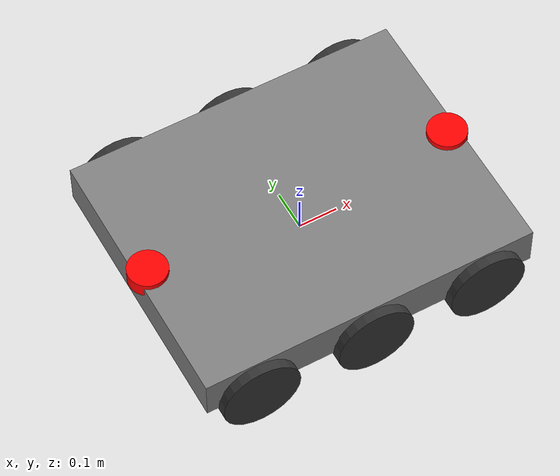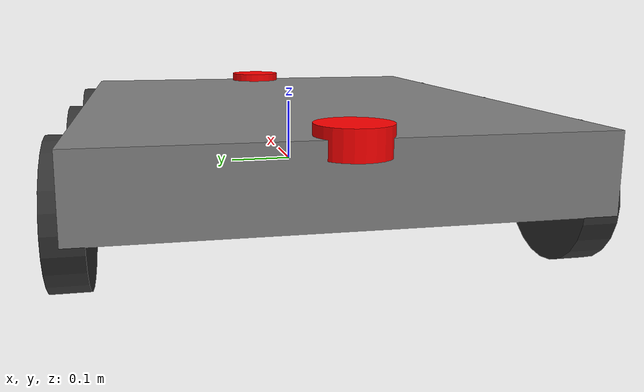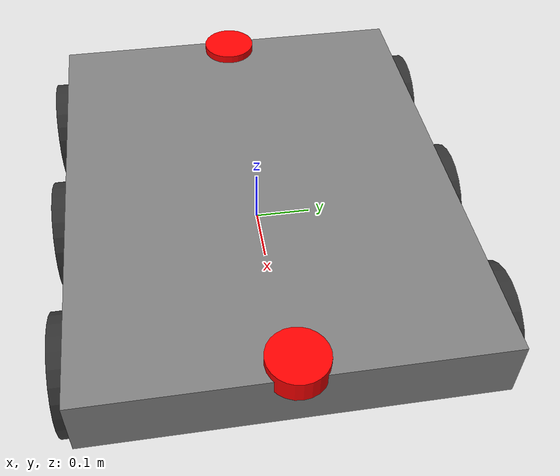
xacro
<?xml version="1.0"?>
<robot name="amr_robot" xmlns:xacro="http://ros.org/wiki/xacro">

    <!-- Materials -->
  <material name="black">
    <color rgba="0.2 0.2 0.2 1"/>
  </material>
  <material name="gray">
    <color rgba="0.5 0.5 0.5 1"/>
  </material>
  <material name="red">
    <color rgba="1 0 0 1"/>
  </material>

  <!-- 로봇 치수 정의 -->
  <xacro:property name="robot_length" value="0.86"/>
  <xacro:property name="robot_width"  value="0.68"/>
  <xacro:property name="robot_height" value="0.11"/>
  <xacro:property name="wheel_radius" value="0.1"/>
  <xacro:property name="wheel_thickness" value="0.05"/>

  <!-- Base Link -->
  <link name="base_link">
    <visual>
      <geometry>
        <box size="${robot_length} ${robot_width} ${robot_height}"/>
      </geometry>
      <origin xyz="0 0 0.05"/>
      <material name="gray"/>
    </visual>
    <collision>
      <geometry>
        <box size="${robot_length} ${robot_width} ${robot_height}"/>
      </geometry>
      <origin xyz="0 0 0.05"/>
    </collision>
    <inertial>
      <mass value="15"/>
      <origin xyz="0 0 0"/>
      <inertia ixx="0.615" ixy="0" ixz="0" iyy="0.853" iyz="0" izz="1.329"/>
    </inertial>
  </link>
  <gazebo reference="base_link">
    <material>Gazebo/White</material>
  </gazebo>

  <!-- 바퀴 매크로 (회전 가능) -->
  <xacro:macro name="wheel" params="wheel_name wheel_joint x y z">
    <link name="${wheel_name}">
      <visual>
        <geometry>
          <cylinder length="${wheel_thickness}" radius="${wheel_radius}"/>
        </geometry>
        <origin rpy="-1.5708 0 0"/>
        <material name="black"/>
      </visual>

      <collision>
        <geometry>
          <cylinder length="${wheel_thickness}" radius="${wheel_radius}"/>
        </geometry>
        <origin rpy="-1.5708 0 0"/>
        <!--
          바퀴와 지면 사이의 마찰을 적용하기 위해
          Gazebo SDF 확장 태그(material > friction > ode > mu/mu2) 추가
        -->
        <gazebo>
          <material>
            <friction>
              <ode>
                <mu>0.6</mu>     <!-- 전진 마찰력 -->
                <mu2>0.01</mu2>  <!-- 측면 마찰력(옴니 휠 적용) -->
              </ode>
            </friction>
          </material>
        </gazebo>
      </collision>

      <inertial>
        <mass value="2"/>
        <origin xyz="0 0 0"/>
        <inertia ixx="0.01225" ixy="0" ixz="0" iyy="0.01225" iyz="0" izz="0.0093"/>
      </inertial>
    </link>

    <joint name="${wheel_joint}" type="continuous">
      <parent link="base_link"/>
      <child link="${wheel_name}"/>
      <origin xyz="${x} ${y} ${z}"/>
      <axis xyz="0 1 0"/>
      <limit effort="30" velocity="10"/>
      <dynamics damping="1.0" friction="0.2"/>
    </joint>
  </xacro:macro>

  <!-- 6개 바퀴 정의 -->
  <xacro:wheel wheel_name="front_left_wheel"
               wheel_joint="front_left_wheel_joint"
               x="0.3" y="0.34" z="0"/>
  <gazebo reference="front_left_wheel">
    <material>Gazebo/BlackTransparent</material>
  </gazebo>

  <xacro:wheel wheel_name="middle_left_wheel"
               wheel_joint="middle_left_wheel_joint"
               x="0.0" y="0.34" z="0"/>
  <gazebo reference="middle_left_wheel">
    <material>Gazebo/Black</material>
  </gazebo>

  <xacro:wheel wheel_name="rear_left_wheel"
               wheel_joint="rear_left_wheel_joint"
               x="-0.3" y="0.34" z="0"/>
  <gazebo reference="rear_left_wheel">
    <material>Gazebo/BlackTransparent</material>
  </gazebo>

  <xacro:wheel wheel_name="front_right_wheel"
               wheel_joint="front_right_wheel_joint"
               x="0.3" y="-0.34" z="0"/>
  <gazebo reference="front_right_wheel">
    <material>Gazebo/BlackTransparent</material>
  </gazebo>

  <xacro:wheel wheel_name="middle_right_wheel"
               wheel_joint="middle_right_wheel_joint"
               x="0.0" y="-0.34" z="0"/>
  <gazebo reference="middle_right_wheel">
    <material>Gazebo/Black</material>
  </gazebo>

  <xacro:wheel wheel_name="rear_right_wheel"
               wheel_joint="rear_right_wheel_joint"
               x="-0.3" y="-0.34" z="0"/>
    <gazebo reference="rear_right_wheel">
    <material>Gazebo/BlackTransparent</material>
  </gazebo>

  <!-- Transmission (ros2_control) -->
  <transmission name="middle_left_trans">
    <type>transmission_interface/SimpleTransmission</type>
    <joint name="middle_left_wheel_joint">
      <interfaceType>hardware_interface/VelocityJointInterface</interfaceType>
    </joint>
    <actuator name="middle_left_motor">
      <mechanicalReduction>1</mechanicalReduction>
      <hardwareInterface>hardware_interface/VelocityJointInterface</hardwareInterface>
    </actuator>
  </transmission>

  <transmission name="middle_right_trans">
    <type>transmission_interface/SimpleTransmission</type>
    <joint name="middle_right_wheel_joint">
      <interfaceType>hardware_interface/VelocityJointInterface</interfaceType>
    </joint>
    <actuator name="middle_right_motor">
      <mechanicalReduction>1</mechanicalReduction>
      <hardwareInterface>hardware_interface/VelocityJointInterface</hardwareInterface>
    </actuator>
  </transmission>

  <!-- Lidar front -->
  <link name="lidar_front_link">
    <visual>
      <geometry>
        <cylinder length="0.04" radius="0.05"/>
      </geometry>
      <origin xyz="0 0 0"/>
      <material name="red"/>
    </visual>
  </link>
  <joint name="lidar_front_joint" type="fixed">
    <parent link="base_link"/>
    <child link="lidar_front_link"/>
    <origin xyz="0.4 0 0.1"/>
  </joint>
  <gazebo reference="lidar_front_link">
    <sensor type="ray" name="front_laser">
      <update_rate>10</update_rate>
      <topicName>front_laser/scan</topicName>
      <horizontal_samples>720</horizontal_samples>
      <horizontal_min_angle>-1.57</horizontal_min_angle>
      <horizontal_max_angle>1.57</horizontal_max_angle>
      <range>
        <min>0.1</min>
        <max>30.0</max>
      </range>
    </sensor>
  </gazebo>
  <gazebo reference="lidar_front_link">
    <material>Gazebo/Red</material>
  </gazebo>

  <!-- Lidar rear -->
  <link name="lidar_rear_link">
    <visual>
      <geometry>
        <cylinder length="0.04" radius="0.05"/>
      </geometry>
      <material name="red"/>
    </visual>
  </link>
  <joint name="lidar_rear_joint" type="fixed">
    <parent link="base_link"/>
    <child link="lidar_rear_link"/>
    <origin xyz="-0.4 0 0.1" rpy="0 0 3.14159"/>
  </joint>
  <gazebo reference="lidar_rear_link">
    <sensor type="ray" name="rear_laser">
      <update_rate>10</update_rate>
      <topicName>rear_laser/scan</topicName>
      <horizontal_samples>720</horizontal_samples>
      <horizontal_min_angle>-1.57</horizontal_min_angle>
      <horizontal_max_angle>1.57</horizontal_max_angle>
      <range>
        <min>0.1</min>
        <max>30.0</max>
      </range>
    </sensor>
  </gazebo>
  <gazebo reference="lidar_rear_link">
    <material>Gazebo/Red</material>
  </gazebo>

  <ros2_control name="GazeboSystem" type="system">
    <hardware>
      <!-- Gazebo 시뮬레이터용 가상 하드웨어 인터페이스 플러그인 -->
      <plugin>gazebo_ros2_control/GazeboSystem</plugin>
    </hardware>

    <joint name="middle_left_wheel_joint">
      <command_interface name="velocity">
        <param name="min">-1.0</param>
        <param name="max">1.0</param>
      </command_interface>
      <state_interface name="position"/>
      <state_interface name="velocity"/>
    </joint>

    <joint name="middle_right_wheel_joint">
      <command_interface name="velocity">
        <param name="min">-1.0</param>
        <param name="max">1.0</param>
      </command_interface>
      <state_interface name="position"/>
      <state_interface name="velocity"/>
    </joint>
  </ros2_control>

  <!-- gazebo_ros2_control plugin -->
  <gazebo>
    <plugin filename="libgazebo_ros2_control.so" name="gazebo_ros2_control">
      <parameters>$(find my_robot_description)/config/ros2_control.yaml</parameters>
    </plugin>
  </gazebo>

</robot>
